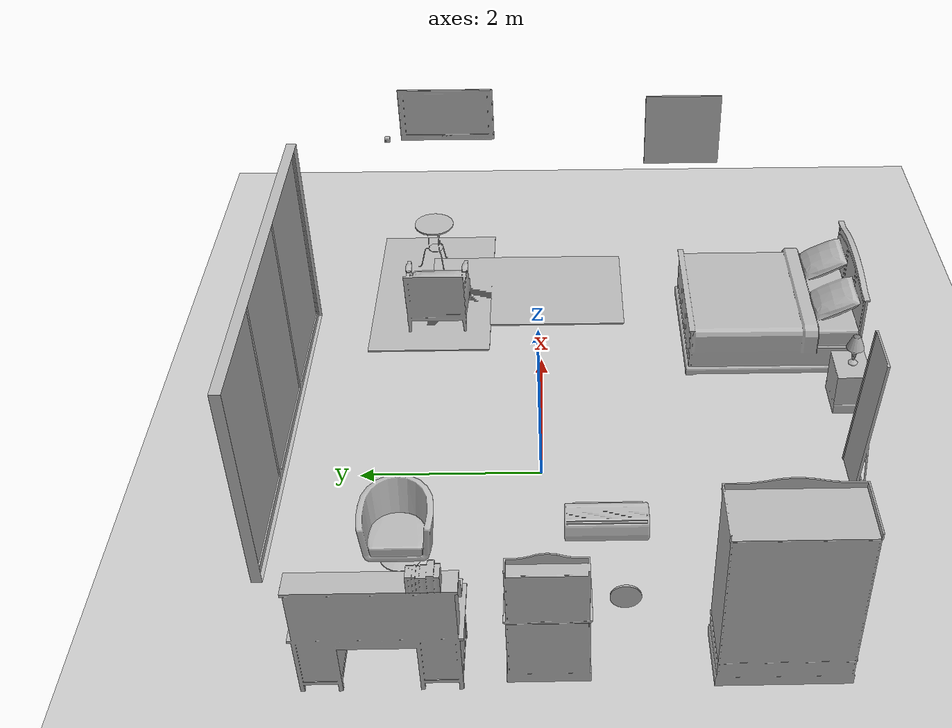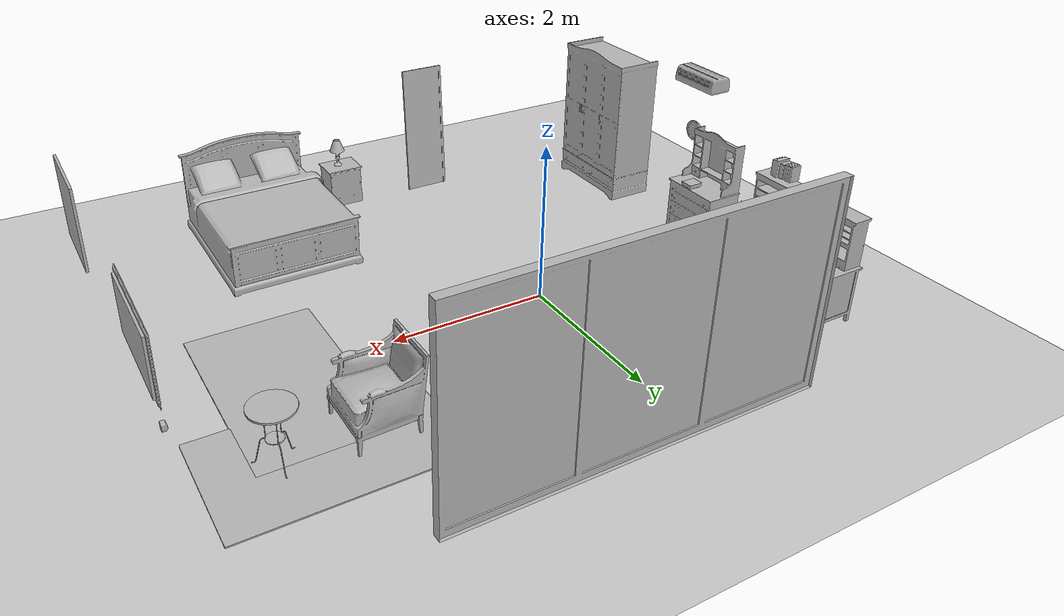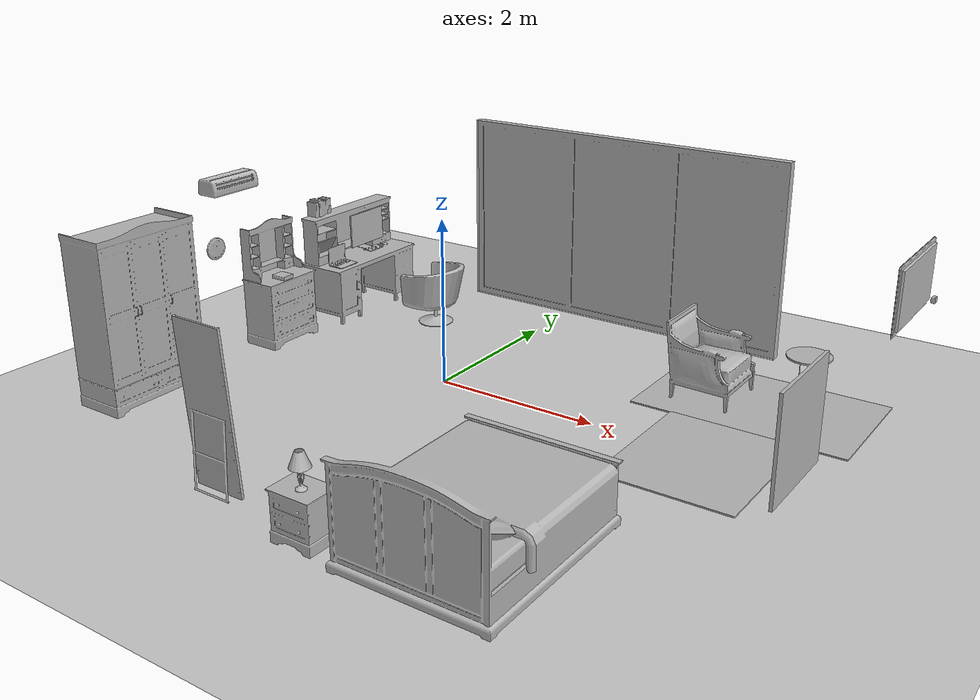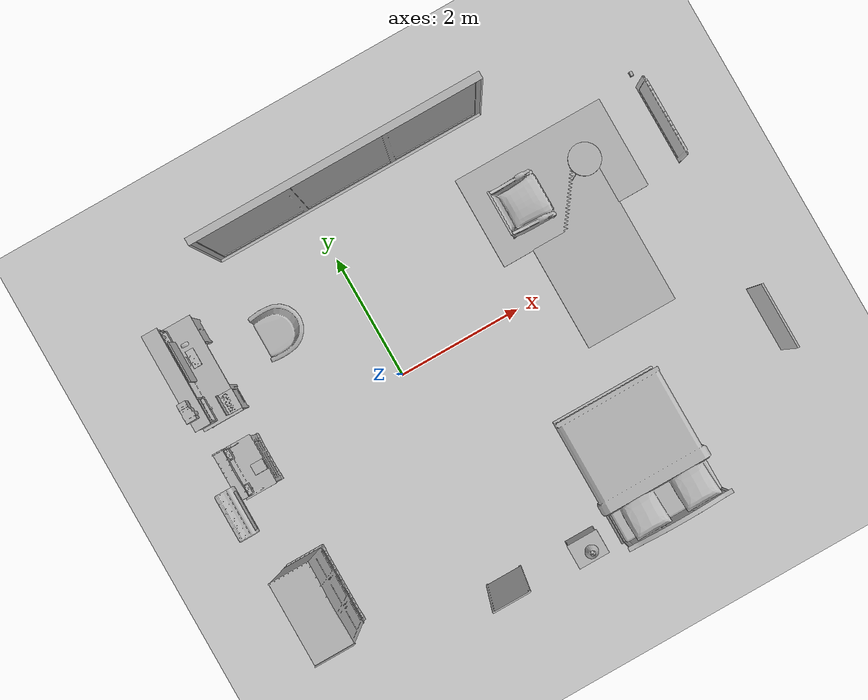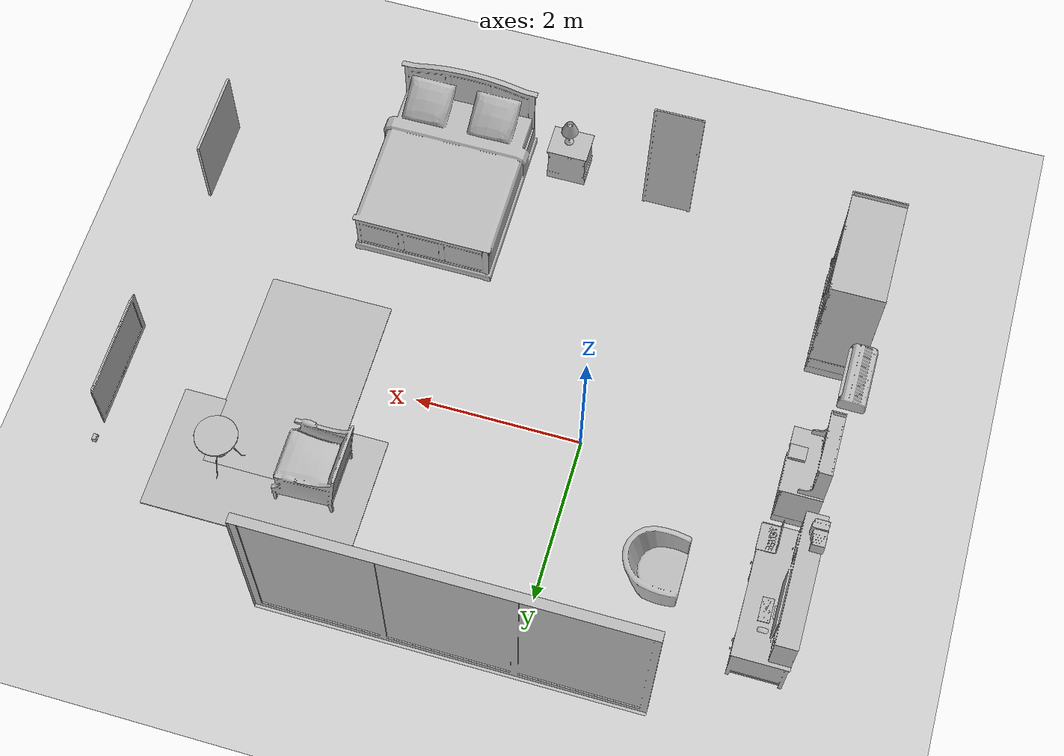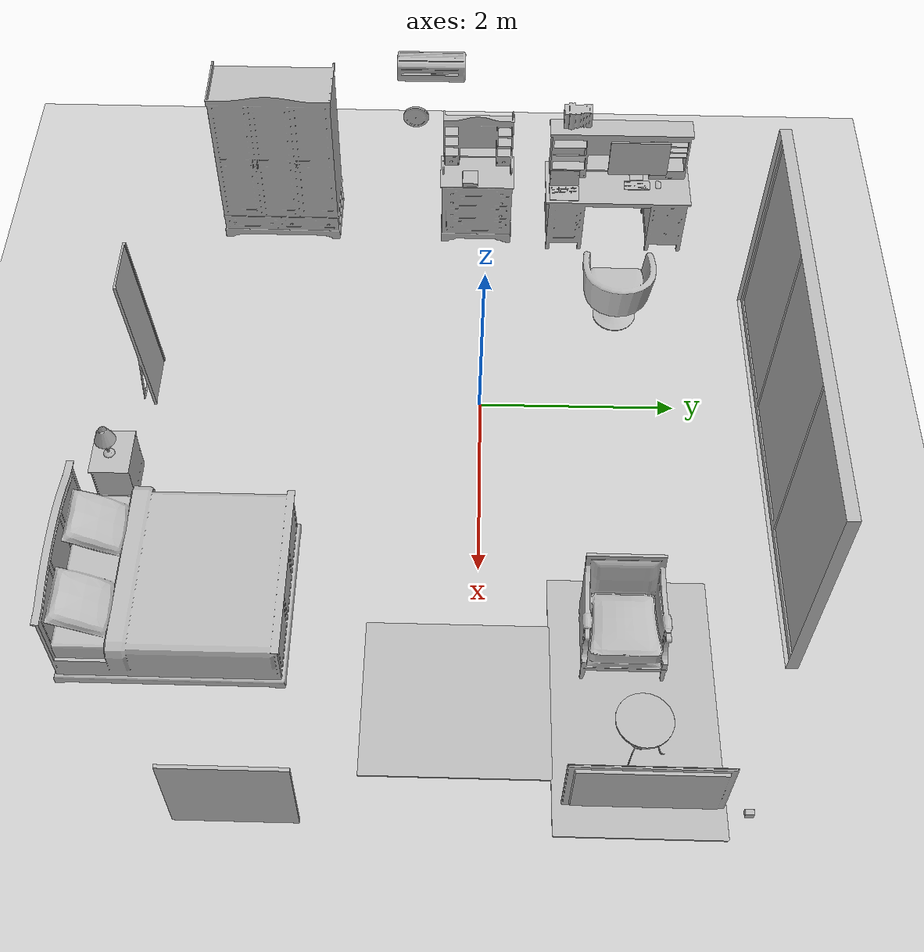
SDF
<sdf version="1.4">
 <world name="default">
  <light name="sun" type="directional">
   <pose>0 0 10 0 -0 0</pose>
   <diffuse>0.8 0.8 0.8 1</diffuse>
   <specular>0.2 0.2 0.2 1</specular>
   <attenuation>
    <range>1000</range>
    <constant>0.9</constant>
    <linear>0.01</linear>
    <quadratic>0.001</quadratic>
   </attenuation>
   <direction>-0.5 0.1 -0.9</direction>
  </light>
  <model name="ground_plane">
   <static>1</static>
   <link name="link">
    <collision name="collision">
     <geometry><plane><normal>0 0 1</normal><size>100 100</size></plane></geometry>
     <surface><friction><ode><mu>100</mu><mu2>50</mu2></ode></friction></surface>
    </collision>
    <visual name="visual">
     <cast_shadows>0</cast_shadows>
     <geometry><plane><normal>0 0 1</normal><size>100 100</size></plane></geometry>
     <material>
      <script><uri>file://media/materials/scripts/gazebo.material</uri><name>Gazebo/Grey</name></script>
     </material>
    </visual>
    <velocity_decay><linear>0</linear><angular>0</angular></velocity_decay>
   </link>
  </model>
  <physics type="ode">
   <max_step_size>0.001</max_step_size>
   <real_time_factor>1</real_time_factor>
   <real_time_update_rate>1000</real_time_update_rate>
   <gravity>0 0 -9.8</gravity>
  </physics>
  <scene><ambient>0.4 0.4 0.4 1</ambient><background>0.7 0.7 0.7 1</background><shadows>1</shadows></scene>
  <spherical_coordinates>
   <surface_model>EARTH_WGS84</surface_model>
   <latitude_deg>0</latitude_deg>
   <longitude_deg>0</longitude_deg>
   <elevation>0</elevation>
   <heading_deg>0</heading_deg>
  </spherical_coordinates>
  <model name="754_1">
   <pose>0.720805 2.88743 0 0 0 -1.5708</pose>
   <static>1</static>
   <link name="link">
    <collision name="collision"><geometry><box><size>0.115 4.5 2</size></box></geometry></collision>
    <visual name="visual"><geometry><mesh><uri>model://754/754.dae</uri></mesh></geometry></visual>
    <velocity_decay><linear>0</linear><angular>0</angular></velocity_decay>
   </link>
  </model>
  <model name="s__590_0">
   <pose>-2.5925 -2.26389 0.05 0 -0 0</pose>
   <static>1</static>
   <link name="link">
    <collision name="collision"><geometry><box><size>0.659606 1.30005 2</size></box></geometry></collision>
    <visual name="visual"><geometry><mesh><uri>model://s__590/s__590.dae</uri></mesh></geometry></visual>
    <velocity_decay><linear>0</linear><angular>0</angular></velocity_decay>
   </link>
  </model>
  <model name="s__592_0">
   <pose>-2.56445 -0.073845 0.012531 0 -0 0</pose>
   <static>1</static>
   <link name="link">
    <collision name="collision"><geometry><box><size>0.5 0.81 2</size></box></geometry></collision>
    <visual name="visual"><geometry><mesh><uri>model://s__592/s__592.dae</uri></mesh></geometry></visual>
    <velocity_decay><linear>0</linear><angular>0</angular></velocity_decay>
   </link>
  </model>
  <model name="s__594_0">
   <pose>1.1168 -3.57924 0.05 0 0 -1.5708</pose>
   <static>1</static>
   <link name="link">
    <collision name="collision"><geometry><box><size>0.39 0.5 2</size></box></geometry></collision>
    <visual name="visual"><geometry><mesh><uri>model://s__594/s__594.dae</uri></mesh></geometry></visual>
    <velocity_decay><linear>0</linear><angular>0</angular></velocity_decay>
   </link>
  </model>
  <model name="s__435_0">
   <pose>3.88388 1.39611 0.102542 0 -0 0</pose>
   <static>1</static>
   <link name="link">
    <collision name="collision"><geometry><box><size>0.5 0.5 2</size></box></geometry></collision>
    <visual name="visual"><geometry><mesh><uri>model://s__435/s__435.dae</uri></mesh></geometry></visual>
    <velocity_decay><linear>0</linear><angular>0</angular></velocity_decay>
   </link>
  </model>
  <model name="s__489_0">
   <pose>-2.55119 1.48125 0.00353 0 -0 0</pose>
   <static>1</static>
   <link name="link">
    <collision name="collision"><geometry><box><size>0.669346 1.58999 2</size></box></geometry></collision>
    <visual name="visual"><geometry><mesh><uri>model://s__489/s__489.dae</uri></mesh></geometry></visual>
    <velocity_decay><linear>0</linear><angular>0</angular></velocity_decay>
   </link>
  </model>
  <model name="s__611_0">
   <pose>-1.18612 1.44411 0.05 0 0 -3.14159</pose>
   <static>1</static>
   <link name="link">
    <collision name="collision"><geometry><box><size>0.699828 0.77 2</size></box></geometry></collision>
    <visual name="visual"><geometry><mesh><uri>model://s__611/s__611.dae</uri></mesh></geometry></visual>
    <velocity_decay><linear>0</linear><angular>0</angular></velocity_decay>
   </link>
  </model>
  <model name="239_0">
   <pose>-0.173263 -3.43588 0.05 0 -0 1.5708</pose>
   <static>1</static>
   <link name="link">
    <collision name="collision"><geometry><box><size>0.149704 0.6 2</size></box></geometry></collision>
    <visual name="visual"><geometry><mesh><uri>model://239/239.dae</uri></mesh></geometry></visual>
    <velocity_decay><linear>0</linear><angular>0</angular></velocity_decay>
   </link>
  </model>
  <model name="228_0">
   <pose>4.91955 1.24011 1.45 0 0 -3.14159</pose>
   <static>1</static>
   <link name="link">
    <collision name="collision"><geometry><box><size>0.05 1.24002 2</size></box></geometry></collision>
    <visual name="visual"><geometry><mesh><uri>model://228/228.dae</uri></mesh></geometry></visual>
    <velocity_decay><linear>0</linear><angular>0</angular></velocity_decay>
   </link>
  </model>
  <model name="189_0">
   <pose>-2.6032 1.69064 0.777947 0 -0 0</pose>
   <static>1</static>
   <link name="link">
    <collision name="collision"><geometry><box><size>0.359507 0.6495 2</size></box></geometry></collision>
    <visual name="visual"><geometry><mesh><uri>model://189/189.dae</uri></mesh></geometry></visual>
    <velocity_decay><linear>0</linear><angular>0</angular></velocity_decay>
   </link>
  </model>
  <model name="120_0">
   <pose>-2.33303 0.881832 0.79 0 -0 0</pose>
   <static>1</static>
   <link name="link">
    <collision name="collision"><geometry><box><size>0.225973 0.32 2</size></box></geometry></collision>
    <visual name="visual"><geometry><mesh><uri>model://120/120.dae</uri></mesh></geometry></visual>
    <velocity_decay><linear>0</linear><angular>0</angular></velocity_decay>
   </link>
  </model>
  <model name="238_0">
   <pose>3.3848 1.39611 0.05 0 -0 1.5708</pose>
   <static>1</static>
   <link name="link">
    <collision name="collision"><geometry><box><size>1.5 2.5 0</size></box></geometry></collision>
    <visual name="visual"><geometry><mesh><uri>model://238/238.dae</uri></mesh></geometry></visual>
    <velocity_decay><linear>0</linear><angular>0</angular></velocity_decay>
   </link>
  </model>
  <model name="238_1">
   <pose>3.3848 0.208108 0.05 0 0 -3.14159</pose>
   <static>1</static>
   <link name="link">
    <collision name="collision"><geometry><box><size>1.5 2.5 0</size></box></geometry></collision>
    <visual name="visual"><geometry><mesh><uri>model://238/238.dae</uri></mesh></geometry></visual>
    <velocity_decay><linear>0</linear><angular>0</angular></velocity_decay>
   </link>
  </model>
  <model name="491_0">
   <pose>2.78205 1.30188 0.088574 0 -0 0</pose>
   <static>1</static>
   <link name="link">
    <collision name="collision"><geometry><box><size>0.789873 0.79 2</size></box></geometry></collision>
    <visual name="visual"><geometry><mesh><uri>model://491/491.dae</uri></mesh></geometry></visual>
    <velocity_decay><linear>0</linear><angular>0</angular></velocity_decay>
   </link>
  </model>
  <model name="225_0">
   <pose>-2.81742 -0.583887 2.05 0 -0 0</pose>
   <static>1</static>
   <link name="link">
    <collision name="collision"><geometry><box><size>0.31 0.710003 2</size></box></geometry></collision>
    <visual name="visual"><geometry><mesh><uri>model://225/225.dae</uri></mesh></geometry></visual>
    <velocity_decay><linear>0</linear><angular>0</angular></velocity_decay>
   </link>
  </model>
  <model name="280_2">
   <pose>4.93393 2.04411 1.41 0 0 -3.14159</pose>
   <static>1</static>
   <link name="link">
    <collision name="collision"><geometry><box><size>0.049998 0.07 0</size></box></geometry></collision>
    <visual name="visual"><geometry><mesh><uri>model://280/280.dae</uri></mesh></geometry></visual>
    <velocity_decay><linear>0</linear><angular>0</angular></velocity_decay>
   </link>
  </model>
  <model name="684_0">
   <pose>1.1408 -3.60122 0.59 0 -0 0</pose>
   <static>1</static>
   <link name="link">
    <collision name="collision"><geometry><box><size>0.208572 0.208572 2</size></box></geometry></collision>
    <visual name="visual"><geometry><mesh><uri>model://684/684.dae</uri></mesh></geometry></visual>
    <velocity_decay><linear>0</linear><angular>0</angular></velocity_decay>
   </link>
  </model>
  <model name="313_0">
   <pose>-2.9229 -0.757849 1.19 0 -0 0</pose>
   <static>1</static>
   <link name="link">
    <collision name="collision"><geometry><box><size>0.028 0.28 0</size></box></geometry></collision>
    <visual name="visual"><geometry><mesh><uri>model://313/313.dae</uri></mesh></geometry></visual>
    <velocity_decay><linear>0</linear><angular>0</angular></velocity_decay>
   </link>
  </model>
  <model name="320_1">
   <pose>-2.8072 1.00011 1.37989 0 -0 0</pose>
   <static>1</static>
   <link name="link">
    <collision name="collision"><geometry><box><size>0.18708 0.300509 2</size></box></geometry></collision>
    <visual name="visual"><geometry><mesh><uri>model://320/320.dae</uri></mesh></geometry></visual>
    <velocity_decay><linear>0</linear><angular>0</angular></velocity_decay>
   </link>
  </model>
  <model name="148_0">
   <pose>-2.4232 -0.151886 0.875783 0 -0 0</pose>
   <static>1</static>
   <link name="link">
    <collision name="collision"><geometry><box><size>0.2 0.17 0</size></box></geometry></collision>
    <visual name="visual"><geometry><mesh><uri>model://148/148.dae</uri></mesh></geometry></visual>
    <velocity_decay><linear>0</linear><angular>0</angular></velocity_decay>
   </link>
  </model>
  <model name="s__418_0">
   <pose>2.4608 -2.78638 0.05 0 -0 1.5708</pose>
   <static>1</static>
   <link name="link">
    <collision name="collision"><geometry><box><size>2.10004 1.81 2</size></box></geometry></collision>
    <visual name="visual"><geometry><mesh><uri>model://s__418/s__418.dae</uri></mesh></geometry></visual>
    <velocity_decay><linear>0</linear><angular>0</angular></velocity_decay>
   </link>
  </model>
  <model name="781_0">
   <pose>4.93754 -1.90019 1.05 0 0 -3.14159</pose>
   <static>1</static>
   <link name="link">
    <collision name="collision"><geometry><box><size>0.03 1 2</size></box></geometry></collision>
    <visual name="visual"><geometry><mesh><uri>model://781/781.dae</uri></mesh></geometry></visual>
    <velocity_decay><linear>0</linear><angular>0</angular></velocity_decay>
   </link>
  </model>
 </world>
</sdf>
